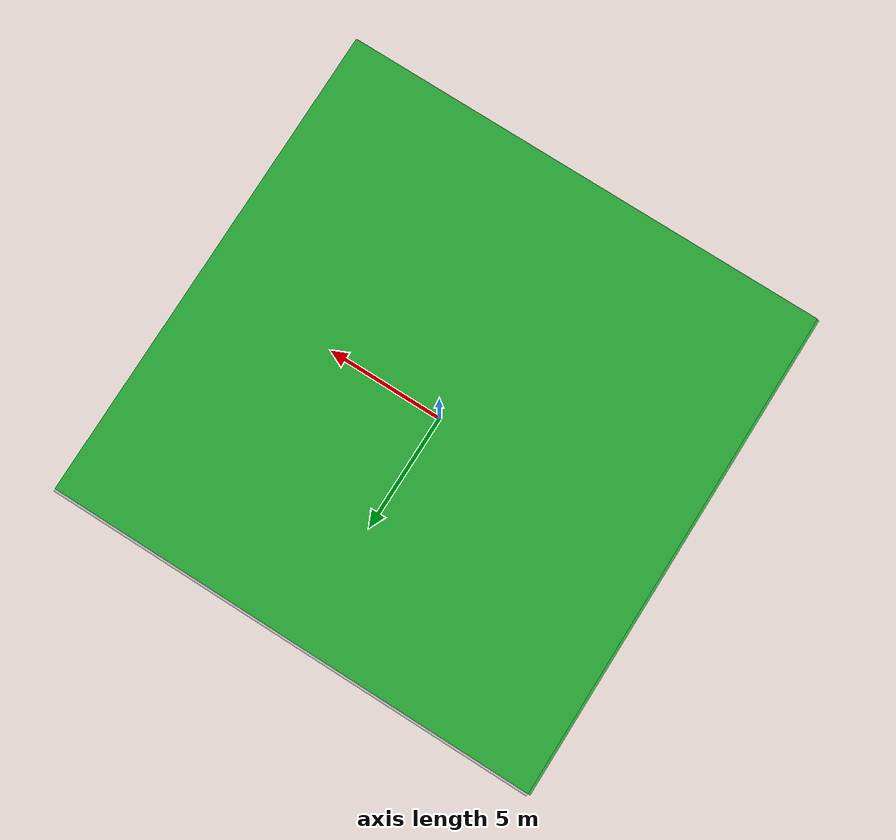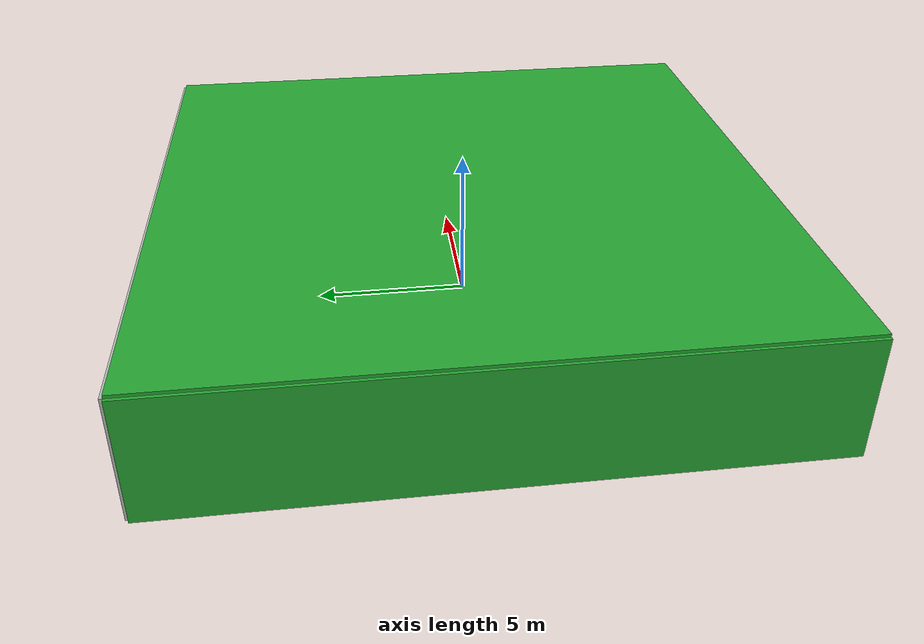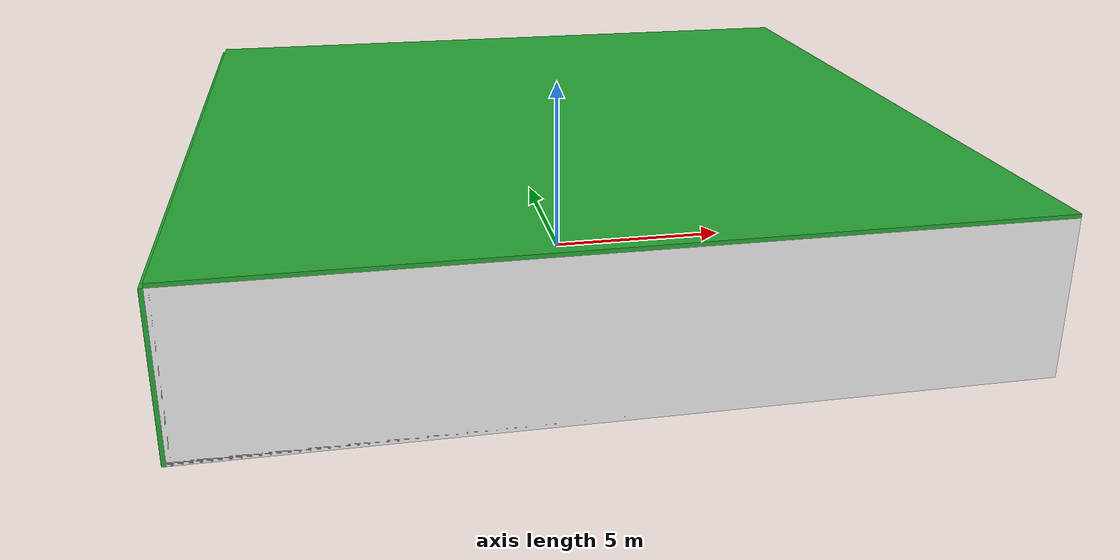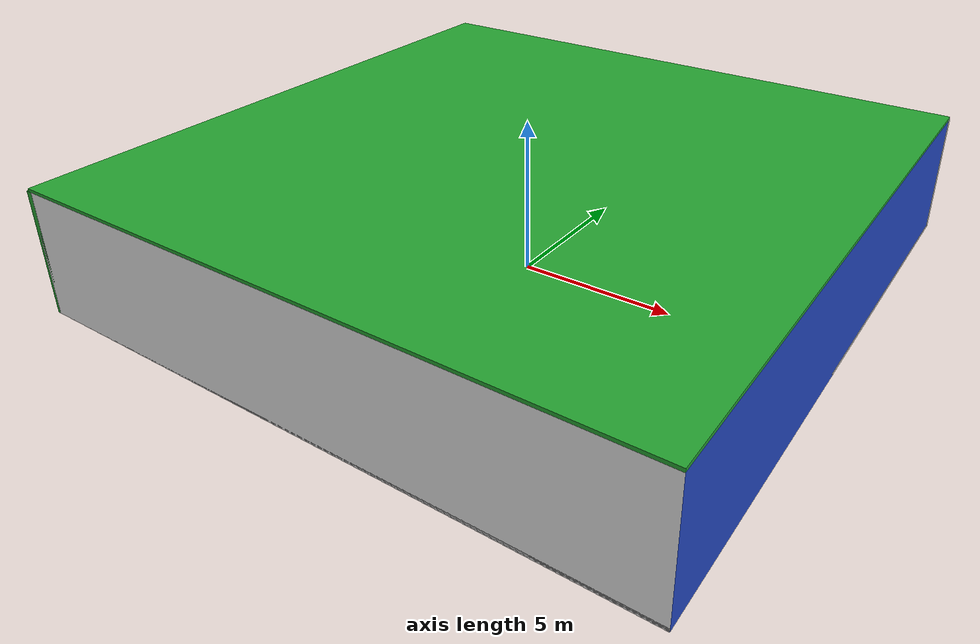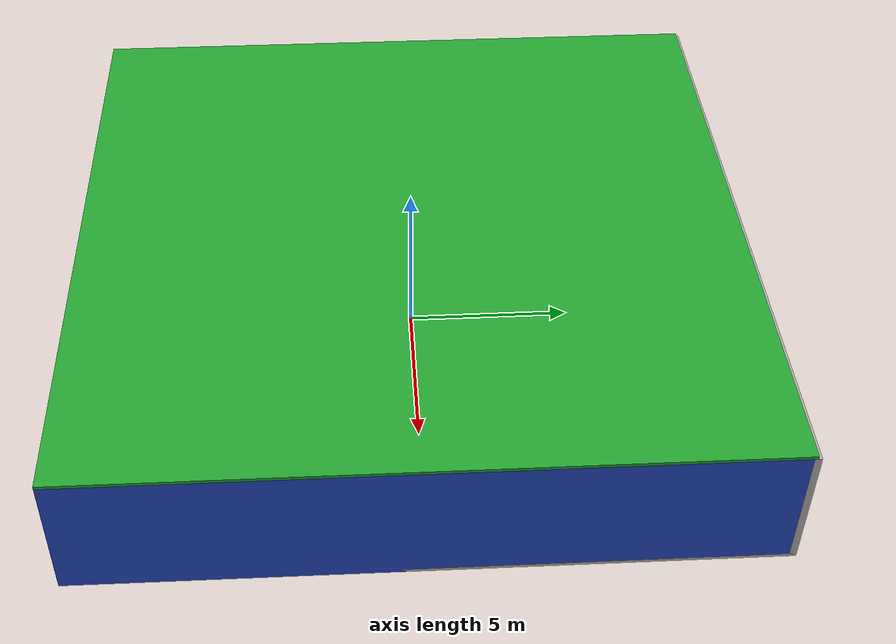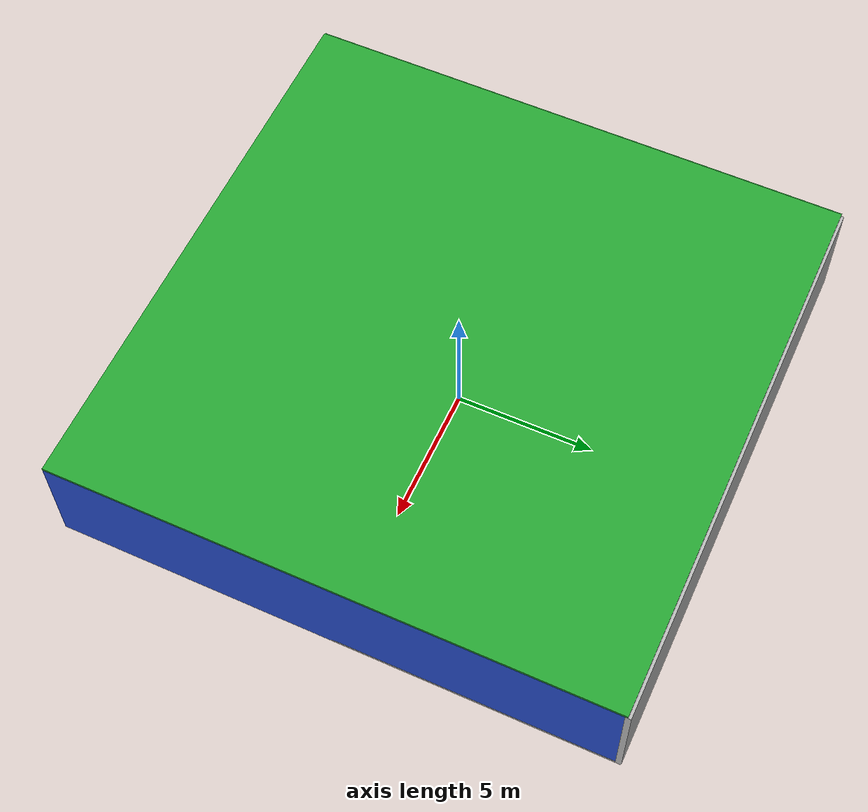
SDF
<sdf version="1.4">
 <world name="default">
  <physics type="ode">
   <max_step_size>0.001</max_step_size>
   <real_time_factor>1</real_time_factor>
   <real_time_update_rate>1000</real_time_update_rate>
   <gravity>0 0 -9.8</gravity>
  </physics>
  <scene><ambient>0.4 0.4 0.4 1</ambient><background>0.7 0.7 0.7 1</background><shadows>1</shadows></scene>
  <model name="Surrounding">
   <static>1</static>
   <link name="Ceiling">
    <collision name="Ceiling_Collision"><geometry><box><size>20 20 0.1</size></box></geometry></collision>
    <visual name="Ceiling_Visual">
     <geometry><box><size>20 20 0.1</size></box></geometry>
     <material>
      <script><uri>file://media/materials/scripts/gazebo.material</uri><name>Gazebo/Green</name></script>
     </material>
    </visual>
    <pose>0 0 4.05 0 0 0</pose>
   </link>
   <link name="Wall_South">
    <collision name="Wall_South_Collision">
     <geometry><box><size>20 0 4</size></box></geometry>
     <pose>0 0 2 0 -0 0</pose>
    </collision>
    <visual name="Wall_South_Visual">
     <pose>0 0 2 0 -0 0</pose>
     <geometry><box><size>20 0 4</size></box></geometry>
     <material>
      <script><uri>file://media/materials/scripts/gazebo.material</uri><name>Gazebo/White</name></script>
     </material>
    </visual>
    <velocity_decay><linear>0</linear><angular>0</angular></velocity_decay>
    <pose>0 -10 0 0 -0 0</pose>
   </link>
   <link name="Wall_East">
    <collision name="Wall_21_Collision">
     <geometry><box><size>20 0 4</size></box></geometry>
     <pose>0 0 2 0 -0 0</pose>
    </collision>
    <visual name="Wall_21_Visual">
     <pose>0 0 2 0 -0 0</pose>
     <geometry><box><size>20 0 4</size></box></geometry>
     <material>
      <script><uri>file://media/materials/scripts/gazebo.material</uri><name>Gazebo/Blue</name></script>
     </material>
    </visual>
    <velocity_decay><linear>0</linear><angular>0</angular></velocity_decay>
    <pose>10 0 0 0 -0 1.5708</pose>
   </link>
   <link name="Wall_North">
    <collision name="Wall_22_Collision">
     <geometry><box><size>20 0.2 4</size></box></geometry>
     <pose>0 0 2 0 -0 0</pose>
    </collision>
    <visual name="Wall_22_Visual">
     <pose>0 0 2 0 -0 0</pose>
     <geometry><box><size>20 0.2 4</size></box></geometry>
     <material>
      <script><uri>file://media/materials/scripts/gazebo.material</uri><name>Gazebo/CloudySky</name></script>
     </material>
    </visual>
    <velocity_decay><linear>0</linear><angular>0</angular></velocity_decay>
    <pose>0 10 0 0 -0 0</pose>
   </link>
   <link name="Wall_West">
    <collision name="Wall_23_Collision">
     <geometry><box><size>20 0.2 4</size></box></geometry>
     <pose>0 0 2 0 -0 0</pose>
    </collision>
    <visual name="Wall_23_Visual">
     <pose>0 0 2 0 -0 0</pose>
     <geometry><box><size>20 0.2 4</size></box></geometry>
     <material>
      <script><uri>file://media/materials/scripts/gazebo.material</uri><name>Gazebo/Green</name></script>
     </material>
    </visual>
    <velocity_decay><linear>0</linear><angular>0</angular></velocity_decay>
    <pose>-10 0 0 0 0 -1.5708</pose>
   </link>
   <link name="Ground_link">
    <collision name="collision">
     <pose>0 0 .05 0 -0 0</pose>
     <geometry><box><size>20 20 0.1</size></box></geometry>
    </collision>
    <visual name="visual">
     <pose>0 0 .05 0 -0 0</pose>
     <geometry><box><size>20 20 0.1</size></box></geometry>
     <material>
      <script><uri>file://media/materials/scripts/gazebo.material</uri><name>Gazebo/JointAnchor</name></script>
     </material>
    </visual>
   </link>
   <static>1</static>
  </model>
  <spherical_coordinates>
   <surface_model>EARTH_WGS84</surface_model>
   <latitude_deg>0</latitude_deg>
   <longitude_deg>0</longitude_deg>
   <elevation>0</elevation>
   <heading_deg>0</heading_deg>
  </spherical_coordinates>
  <light name="lightball_0" type="diffuse">
   <diffuse>0.8 0.8 0.8 1</diffuse>
   <specular>0.2 0.2 0.2 1</specular>
   <attenuation>
    <range>100</range>
    <constant>0.7</constant>
    <linear>0.01</linear>
    <quadratic>0.001</quadratic>
   </attenuation>
   <direction>-0.5 0.1 -0.9</direction>
   <pose>-7.53968659166 -0.531189479325 2.59208905842 0 0 0</pose>
  </light>
  <light name="lightball_1" type="diffuse">
   <diffuse>0.8 0.8 0.8 1</diffuse>
   <specular>0.2 0.2 0.2 1</specular>
   <attenuation>
    <range>100</range>
    <constant>0.7</constant>
    <linear>0.01</linear>
    <quadratic>0.001</quadratic>
   </attenuation>
   <direction>-0.5 0.1 -0.9</direction>
   <pose>8.78299855044 -0.238067274378 2.76370993721 0 0 0</pose>
  </light>
  <light name="lightball_2" type="diffuse">
   <diffuse>0.8 0.8 0.8 1</diffuse>
   <specular>0.2 0.2 0.2 1</specular>
   <attenuation>
    <range>100</range>
    <constant>0.7</constant>
    <linear>0.01</linear>
    <quadratic>0.001</quadratic>
   </attenuation>
   <direction>-0.5 0.1 -0.9</direction>
   <pose>-7.59482230232 7.76741560447 3.30078242265 0 0 0</pose>
  </light>
  <light name="lightball_3" type="diffuse">
   <diffuse>0.8 0.8 0.8 1</diffuse>
   <specular>0.2 0.2 0.2 1</specular>
   <attenuation>
    <range>100</range>
    <constant>0.7</constant>
    <linear>0.01</linear>
    <quadratic>0.001</quadratic>
   </attenuation>
   <direction>-0.5 0.1 -0.9</direction>
   <pose>-0.906030399701 8.55464410637 2.66748001304 0 0 0</pose>
  </light>
  <light name="lightball_4" type="diffuse">
   <diffuse>0.8 0.8 0.8 1</diffuse>
   <specular>0.2 0.2 0.2 1</specular>
   <attenuation>
    <range>100</range>
    <constant>0.7</constant>
    <linear>0.01</linear>
    <quadratic>0.001</quadratic>
   </attenuation>
   <direction>-0.5 0.1 -0.9</direction>
   <pose>2.78423002851 1.32426567675 2.39025354086 0 0 0</pose>
  </light>
  <light name="lightball_5" type="diffuse">
   <diffuse>0.8 0.8 0.8 1</diffuse>
   <specular>0.2 0.2 0.2 1</specular>
   <attenuation>
    <range>100</range>
    <constant>0.7</constant>
    <linear>0.01</linear>
    <quadratic>0.001</quadratic>
   </attenuation>
   <direction>-0.5 0.1 -0.9</direction>
   <pose>6.18242333418 9.21478800663 2.25772193752 0 0 0</pose>
  </light>
  <light name="lightball_6" type="diffuse">
   <diffuse>0.8 0.8 0.8 1</diffuse>
   <specular>0.2 0.2 0.2 1</specular>
   <attenuation>
    <range>100</range>
    <constant>0.7</constant>
    <linear>0.01</linear>
    <quadratic>0.001</quadratic>
   </attenuation>
   <direction>-0.5 0.1 -0.9</direction>
   <pose>3.81813304287 8.3599996752 3.408880599 0 0 0</pose>
  </light>
  <light name="lightball_7" type="diffuse">
   <diffuse>0.8 0.8 0.8 1</diffuse>
   <specular>0.2 0.2 0.2 1</specular>
   <attenuation>
    <range>100</range>
    <constant>0.7</constant>
    <linear>0.01</linear>
    <quadratic>0.001</quadratic>
   </attenuation>
   <direction>-0.5 0.1 -0.9</direction>
   <pose>1.846642323 4.49558656744 3.68192160488 0 0 0</pose>
  </light>
  <light name="lightball_8" type="diffuse">
   <diffuse>0.8 0.8 0.8 1</diffuse>
   <specular>0.2 0.2 0.2 1</specular>
   <attenuation>
    <range>100</range>
    <constant>0.7</constant>
    <linear>0.01</linear>
    <quadratic>0.001</quadratic>
   </attenuation>
   <direction>-0.5 0.1 -0.9</direction>
   <pose>7.51858889933 -3.17441406623 2.94772926571 0 0 0</pose>
  </light>
  <include><uri>model://cabinet</uri><pose>-5.46747223025 2.17459216413 0 0 0 0.0582812059365</pose></include>
  <include><uri>model://cabinet</uri><pose>-0.443499318805 -1.19803252327 0 0 0 1.91525193492</pose></include>
  <include>
   <uri>model://robocup_3Dsim_goal</uri>
   <pose>-2.42446612184 6.6543143123 0 0 0 0.429223792407</pose>
  </include>
  <include><uri>model://cabinet</uri><pose>2.44308492195 -0.749327640755 0 0 0 1.40871575342</pose></include>
  <include><uri>model://table</uri><pose>1.26103601184 3.65151397899 0 0 0 2.48865304024</pose></include>
  <include><uri>model://table</uri><pose>8.14647621117 6.71453715914 0 0 0 2.95816394973</pose></include>
 </world>
</sdf>

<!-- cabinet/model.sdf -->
<sdf version="1.5">
  <model name="cabinet">
    <static>true</static>
    <link name="cabinet_bottom_plate">
      <inertial>
        <pose>0 0 -1 0 0 0</pose>
        <inertia>
          <ixx>2.050000</ixx>
          <ixy>0</ixy>
          <ixz>0</ixz>
          <iyy>2.050000</iyy>
          <iyz>0</iyz>
          <izz>2.050000</izz>
        </inertia>
        <mass>25.000000</mass>
      </inertial>
      <collision name="cabinet_bottom_plate_geom">
        <pose>0 0 0.010000 0 0 0</pose>
        <geometry>
          <box>
            <size>0.450000 0.450000 0.020000</size>
          </box>
        </geometry>
      </collision>
      <visual name="cabinet_bottom_plate_geom_visual">
        <pose>0 0 0.010000 0 0 0</pose>
        <geometry>
          <box>
            <size>0.450000 0.450000 0.020000</size>
          </box>
        </geometry>
        <material>
          <script>
            <uri>model://media/materials/scripts/gazebo.material</uri>
            <name>Gazebo/Wood</name>
          </script>
        </material>
      </visual>
      <collision name="cabinet_bottom_plate_geom_cabinet_back_plate">
        <pose>0.235000 0 0.510000 0 0 0</pose>
        <geometry>
          <box>
            <size>0.020000 0.450000 1.020000</size>
          </box>
        </geometry>
      </collision>
      <visual name="cabinet_bottom_plate_geom_cabinet_back_plate_visual">
        <pose>0.235000 0 0.510000 0 0 0</pose>
        <geometry>
          <box>
            <size>0.020000 0.450000 1.020000</size>
          </box>
        </geometry>
        <material>
          <script>
            <uri>model://media/materials/scripts/gazebo.material</uri>
            <name>Gazebo/Wood</name>
          </script>
        </material>
      </visual>
      <collision name="cabinet_bottom_plate_geom_cabinet_left_plate">
        <pose>0 0.235000 0.510000 0 0 0</pose>
        <geometry>
          <box>
            <size>0.450000 0.020000 1.020000</size>
          </box>
        </geometry>
      </collision>
      <visual name="cabinet_bottom_plate_geom_cabinet_left_plate_visual">
        <pose>0 0.235000 0.510000 0 0 0</pose>
        <geometry>
          <box>
            <size>0.450000 0.020000 1.020000</size>
          </box>
        </geometry>
        <material>
          <script>
            <uri>model://media/materials/scripts/gazebo.material</uri>
            <name>Gazebo/Wood</name>
          </script>
        </material>
      </visual>
      <collision name="cabinet_bottom_plate_geom_cabinet_middle_plate">
        <pose>0 0 0.510000 0 0 0</pose>
        <geometry>
          <box>
            <size>0.450000 0.450000 0.020000</size>
          </box>
        </geometry>
      </collision>
      <visual name="cabinet_bottom_plate_geom_cabinet_middle_plate_visual">
        <pose>0 0 0.510000 0 0 0</pose>
        <geometry>
          <box>
            <size>0.450000 0.450000 0.020000</size>
          </box>
        </geometry>
        <material>
          <script>
            <uri>model://media/materials/scripts/gazebo.material</uri>
            <name>Gazebo/Wood</name>
          </script>
        </material>
      </visual>
      <collision name="cabinet_bottom_plate_geom_cabinet_right_plate">
        <pose>0 -0.235000 0.510000 0 0 0</pose>
        <geometry>
          <box>
            <size>0.450000 0.020000 1.020000</size>
          </box>
        </geometry>
      </collision>
      <visual name="cabinet_bottom_plate_geom_cabinet_right_plate_visual">
        <pose>0 -0.235000 0.510000 0 0 0</pose>
        <geometry>
          <box>
            <size>0.450000 0.020000 1.020000</size>
          </box>
        </geometry>
        <material>
          <script>
            <uri>model://media/materials/scripts/gazebo.material</uri>
            <name>Gazebo/Wood</name>
          </script>
        </material>
      </visual>
      <collision name="cabinet_bottom_plate_geom_cabinet_top_plate">
        <pose>0 0 1.010000 0 0 0</pose>
        <geometry>
          <box>
            <size>0.450000 0.450000 0.020000</size>
          </box>
        </geometry>
      </collision>
      <visual name="cabinet_bottom_plate_geom_cabinet_top_plate_visual">
        <pose>0 0 1.010000 0 0 0</pose>
        <geometry>
          <box>
            <size>0.450000 0.450000 0.020000</size>
          </box>
        </geometry>
        <material>
          <script>
            <uri>model://media/materials/scripts/gazebo.material</uri>
            <name>Gazebo/Wood</name>
          </script>
        </material>
      </visual>
    </link>
  </model>
</sdf>

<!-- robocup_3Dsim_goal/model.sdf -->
<sdf version="1.5">
  <model name="robocup_3d_goal">
    <static>true</static>
    <link name="left_post">
      <pose>0 1.05 0.45 0 0 0</pose>
      <collision name="collision">
        <geometry>
          <cylinder>
            <radius>0.05</radius>
            <length>0.9</length>
          </cylinder>
        </geometry>
      </collision>
      <visual name="visual">
        <geometry>
          <cylinder>
            <radius>0.05</radius>
            <length>0.9</length>
          </cylinder>
        </geometry>
        <material>
          <script>
            <uri>file://media/materials/scripts/gazebo.material</uri>
            <name>Gazebo/ZincYellow</name>
          </script>
        </material>
      </visual>
    </link>
    <link name="left_support_horiz_lower">
      <pose>0.30 1.05 0.01 0 0 0</pose>
      <collision name="collision">
        <geometry>
          <box>
            <size>0.50 0.02 0.02</size>
          </box>
        </geometry>
      </collision>
      <visual name="visual">
        <geometry>
          <box>
            <size>0.50 0.02 0.02</size>
          </box>
        </geometry>
        <material>
          <script>
            <uri>file://media/materials/scripts/gazebo.material</uri>
            <name>Gazebo/White</name>
          </script>
        </material>
      </visual>
    </link>
    <link name="left_support_horiz_upper">
      <pose>0.30 1.05 0.79 0 0 0</pose>
      <collision name="collision">
        <geometry>
          <box>
            <size>0.50 0.02 0.02</size>
          </box>
        </geometry>
      </collision>
      <visual name="visual">
        <geometry>
          <box>
            <size>0.50 0.02 0.02</size>
          </box>
        </geometry>
        <material>
          <script>
            <uri>file://media/materials/scripts/gazebo.material</uri>
            <name>Gazebo/White</name>
          </script>
        </material>
      </visual>
    </link>
    <link name="left_support_vertical">
      <pose>0.56 1.05 0.4 0 1.5708 0</pose>
      <collision name="collision">
        <geometry>
          <box>
            <size>0.80 0.02 0.02</size>
          </box>
        </geometry>
      </collision>
      <visual name="visual">
        <geometry>
          <box>
            <size>0.80 0.02 0.02</size>
          </box>
        </geometry>
        <material>
          <script>
            <uri>file://media/materials/scripts/gazebo.material</uri>
            <name>Gazebo/White</name>
          </script>
        </material>
      </visual>
    </link>
    <link name="right_support_horiz_lower">
      <pose>0.30 -1.05 0.01 0 0 0</pose>
      <collision name="collision">
        <geometry>
          <box>
            <size>0.50 0.02 0.02</size>
          </box>
        </geometry>
      </collision>
      <visual name="visual">
        <geometry>
          <box>
            <size>0.50 0.02 0.02</size>
          </box>
        </geometry>
        <material>
          <script>
            <uri>file://media/materials/scripts/gazebo.material</uri>
            <name>Gazebo/White</name>
          </script>
        </material>
      </visual>
    </link>
    <link name="right_support_horiz_upper">
      <pose>0.30 -1.05 0.79 0 0 0</pose>
      <collision name="collision">
        <geometry>
          <box>
            <size>0.50 0.02 0.02</size>
          </box>
        </geometry>
      </collision>
      <visual name="visual">
        <geometry>
          <box>
            <size>0.50 0.02 0.02</size>
          </box>
        </geometry>
        <material>
          <script>
            <uri>file://media/materials/scripts/gazebo.material</uri>
            <name>Gazebo/White</name>
          </script>
        </material>
      </visual>
    </link>
    <link name="right_support_vertical">
      <pose>0.56 -1.05 0.4 0 1.5708 0</pose>
      <collision name="collision">
        <geometry>
          <box>
            <size>0.80 0.02 0.02</size>
          </box>
        </geometry>
      </collision>
      <visual name="visual">
        <geometry>
          <box>
            <size>0.80 0.02 0.02</size>
          </box>
        </geometry>
        <material>
          <script>
            <uri>file://media/materials/scripts/gazebo.material</uri>
            <name>Gazebo/White</name>
          </script>
        </material>
      </visual>
    </link>
    <link name="center_support_horiz_lower">
      <pose>0.56 0 0.01 0 1.5708 0</pose>
      <collision name="collision">
        <geometry>
          <box>
            <size>0.02 2.08 0.02</size>
          </box>
        </geometry>
      </collision>
      <visual name="visual">
        <geometry>
          <box>
            <size>0.02 2.08 0.02</size>
          </box>
        </geometry>
        <material>
          <script>
            <uri>file://media/materials/scripts/gazebo.material</uri>
            <name>Gazebo/White</name>
          </script>
        </material>
      </visual>
    </link>
    <link name="center_support_horiz_upper">
      <pose>0.56 0 0.79 0 1.5708 0</pose>
      <collision name="collision">
        <geometry>
          <box>
            <size>0.02 2.08 0.02</size>
          </box>
        </geometry>
      </collision>
      <visual name="visual">
        <geometry>
          <box>
            <size>0.02 2.08 0.02</size>
          </box>
        </geometry>
        <material>
          <script>
            <uri>file://media/materials/scripts/gazebo.material</uri>
            <name>Gazebo/White</name>
          </script>
        </material>
      </visual>
    </link>
    <link name="right_post">
      <pose>0 -1.05 0.45 0 0 0</pose>
      <collision name="collision">
        <geometry>
          <cylinder>
            <radius>0.05</radius>
            <length>0.9</length>
          </cylinder>
        </geometry>
      </collision>
      <visual name="visual">
        <geometry>
          <cylinder>
            <radius>0.05</radius>
            <length>0.9</length>
          </cylinder>
        </geometry>
        <material>
          <script>
            <uri>file://media/materials/scripts/gazebo.material</uri>
            <name>Gazebo/ZincYellow</name>
          </script>
        </material>
      </visual>
    </link>
    <link name="crossbar">
      <pose>0 0 0.85 1.57 1.57 0</pose>
      <collision name="collision">
        <geometry>
          <cylinder>
            <radius>0.05</radius>
            <length>2.0</length>
          </cylinder>
        </geometry>
      </collision>
      <visual name="visual">
        <geometry>
          <cylinder>
            <radius>0.05</radius>
            <length>2.0</length>
          </cylinder>
        </geometry>
        <material>
          <script>
            <uri>file://media/materials/scripts/gazebo.material</uri>
            <name>Gazebo/ZincYellow</name>
          </script>
        </material>
      </visual>
    </link>
    <link name="center_net">
      <pose>0.56 0 0.40 0 0 0</pose>
      <collision name="collision">
        <geometry>
          <box>
            <size>0.01 2.1 0.80</size>
          </box>
        </geometry>
      </collision>
      <visual name="visual">
        <geometry>
          <box>
            <size>0.01 2.1 0.80</size>
          </box>
        </geometry>
        <material>
          <script>
            <uri>model://../model_source/models/robocup09_spl_field/materials/scripts/</uri>
            <uri>model://../model_source/models/robocup09_spl_field/materials/textures/</uri>
            <name>RoboCup/Net</name>
          </script>
        </material>
      </visual>
    </link>
    <link name="left_net">
      <pose>0.30 1.05 0.40 0 0 0</pose>
      <collision name="collision">
        <geometry>
          <box>
            <size>0.50 0.01 0.76</size>
          </box>
        </geometry>
      </collision>
      <visual name="visual">
        <geometry>
          <box>
            <size>0.50 0.01 0.76</size>
          </box>
        </geometry>
        <material>
          <script>
            <uri>model://../model_source/models/robocup09_spl_field/materials/scripts/</uri>
            <uri>model://../model_source/models/robocup09_spl_field/materials/textures/</uri>
            <name>RoboCup/Net</name>
          </script>
        </material>
      </visual>
    </link>
    <link name="right_net">
      <pose>0.30 -1.05 0.40 0 0 0</pose>
      <collision name="collision">
        <geometry>
          <box>
            <size>0.50 0.01 0.76</size>
          </box>
        </geometry>
      </collision>
      <visual name="visual">
        <geometry>
          <box>
            <size>0.50 0.01 0.76</size>
          </box>
        </geometry>
        <material>
          <script>
            <uri>model://../model_source/models/robocup09_spl_field/materials/scripts/</uri>
            <uri>model://../model_source/models/robocup09_spl_field/materials/textures/</uri>
            <name>RoboCup/Net</name>
          </script>
        </material>
      </visual>
    </link>
  </model>
</sdf>

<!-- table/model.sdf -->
<sdf version="1.5">
  <model name="table">
    <static>true</static>
    <link name="link">
      <collision name="surface">
        <pose>0 0 1.0 0 0 0</pose>
        <geometry>
          <box>
            <size>1.5 0.8 0.03</size>
          </box>
        </geometry>
        <surface>
          <friction>
            <ode>
              <mu>0.6</mu>
              <mu2>0.6</mu2>
            </ode>
          </friction>
        </surface>
      </collision>
      <visual name="visual1">
        <pose>0 0 1.0 0 0 0</pose>
        <geometry>
          <box>
            <size>1.5 0.8 0.03</size>
          </box>
        </geometry>
        <material>
          <script>
            <uri>model://media/materials/scripts/gazebo.material</uri>
            <name>Gazebo/Wood</name>
          </script>
        </material>
      </visual>
      <collision name="front_left_leg">
        <pose>0.68 0.38 0.5 0 0 0</pose>
        <geometry>
          <cylinder>
            <radius>0.02</radius>
            <length>1.0</length>
          </cylinder>
        </geometry>
      </collision>
      <visual name="front_left_leg">
        <pose>0.68 0.38 0.5 0 0 0</pose>
        <geometry>
          <cylinder>
            <radius>0.02</radius>
            <length>1.0</length>
          </cylinder>
        </geometry>
        <material>
          <script>
            <uri>model://media/materials/scripts/gazebo.material</uri>
            <name>Gazebo/Grey</name>
          </script>
        </material>
      </visual>
      <collision name="front_right_leg">
        <pose>0.68 -0.38 0.5 0 0 0</pose>
        <geometry>
          <cylinder>
            <radius>0.02</radius>
            <length>1.0</length>
          </cylinder>
        </geometry>
      </collision>
      <visual name="front_right_leg">
        <pose>0.68 -0.38 0.5 0 0 0</pose>
        <geometry>
          <cylinder>
            <radius>0.02</radius>
            <length>1.0</length>
          </cylinder>
        </geometry>
        <material>
          <script>
            <uri>model://media/materials/scripts/gazebo.material</uri>
            <name>Gazebo/Grey</name>
          </script>
        </material>
      </visual>
      <collision name="back_right_leg">
        <pose>-0.68 -0.38 0.5 0 0 0</pose>
        <geometry>
          <cylinder>
            <radius>0.02</radius>
            <length>1.0</length>
          </cylinder>
        </geometry>
      </collision>
      <visual name="back_right_leg">
        <pose>-0.68 -0.38 0.5 0 0 0</pose>
        <geometry>
          <cylinder>
            <radius>0.02</radius>
            <length>1.0</length>
          </cylinder>
        </geometry>
        <material>
          <script>
            <uri>model://media/materials/scripts/gazebo.material</uri>
            <name>Gazebo/Grey</name>
          </script>
        </material>
      </visual>
      <collision name="back_left_leg">
        <pose>-0.68 0.38 0.5 0 0 0</pose>
        <geometry>
          <cylinder>
            <radius>0.02</radius>
            <length>1.0</length>
          </cylinder>
        </geometry>
      </collision>
      <visual name="back_left_leg">
        <pose>-0.68 0.38 0.5 0 0 0</pose>
        <geometry>
          <cylinder>
            <radius>0.02</radius>
            <length>1.0</length>
          </cylinder>
        </geometry>
        <material>
          <script>
            <uri>model://media/materials/scripts/gazebo.material</uri>
            <name>Gazebo/Grey</name>
          </script>
        </material>
      </visual>
    </link>
  </model>
</sdf>
